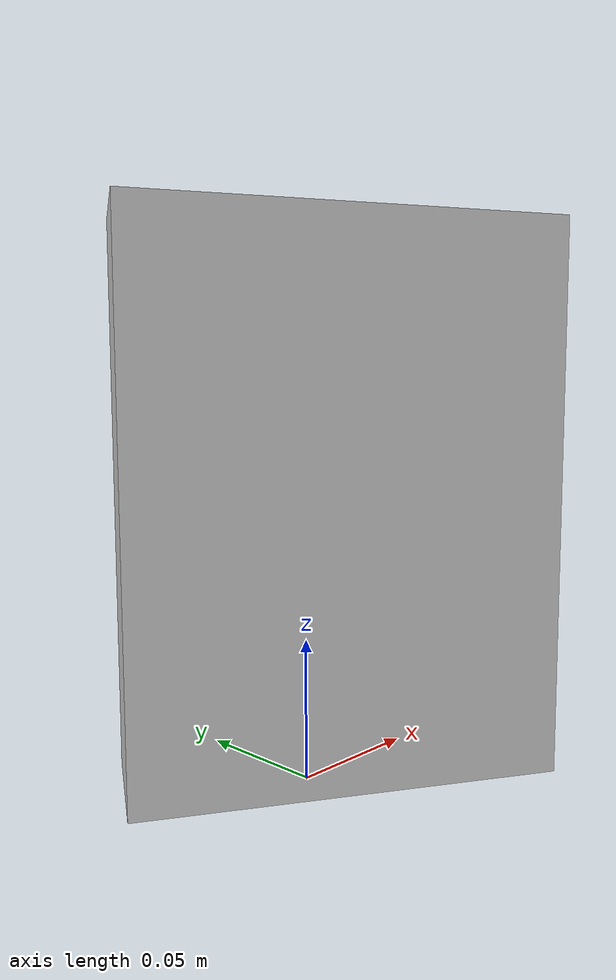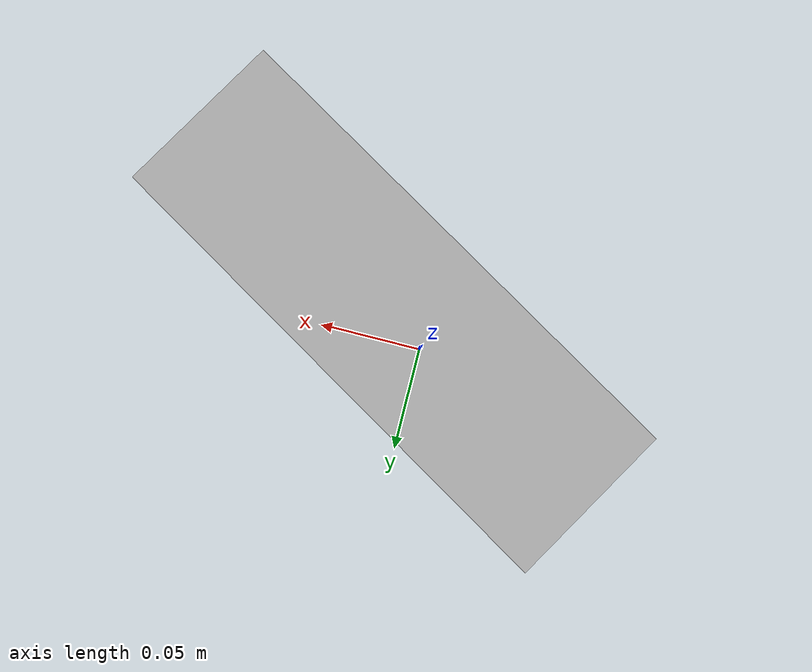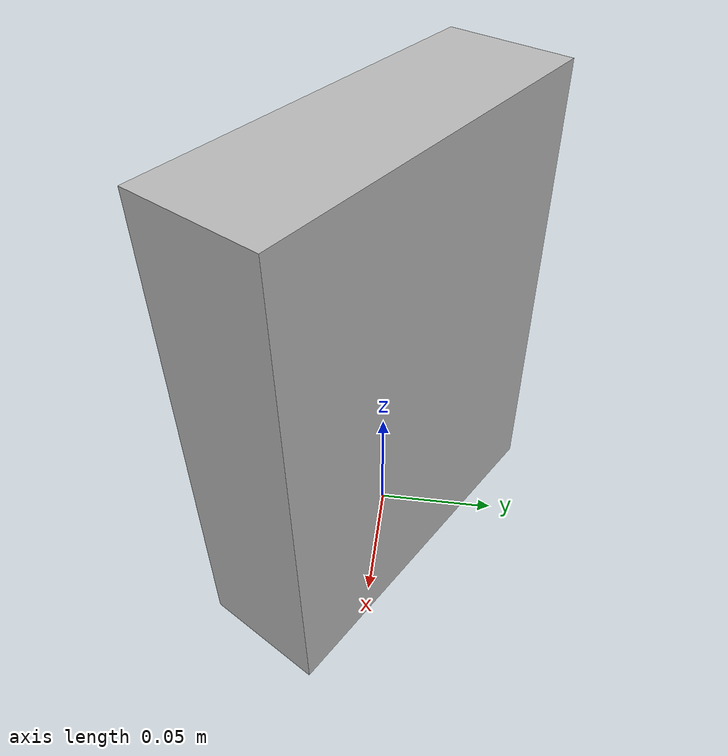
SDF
<sdf version='1.6'>
  <model name='box'>
    <link name='main_body'>
      <pose frame=''>0 0 0.0 0 0 0</pose>
      <inertial>
        <pose frame=''>0.0 0 0.0 0 -0 0</pose>
        <mass>0.225</mass>
        <inertia>
          <ixx>0.00113484375</ixx>
          <ixy>0</ixy>
          <ixz>0</ixz>
          <iyy>0.00075984375</iyy>
          <iyz>0</iyz>
          <izz>0.00046875</izz>
        </inertia>
      </inertial>

      <visual name='main_body_visual'>
        <pose frame=''>0.014 -0.0005 0.0975 0 -0 1.03</pose>
        <geometry>
          <box>
            <size>0.05 0.15 0.195</size>
          </box>
        </geometry>
      </visual>

      <collision name='main_body_collision'>
        <pose frame=''>0.014 -0.0005 0.0975 0 -0 1.03</pose>
        <geometry>
          <box>
            <size>0.05 0.15 0.195</size>
          </box>
        </geometry>
        <surface>
          <friction>
            <ode>
              <mu>0.9</mu>
              <mu2>0.5</mu2>
            </ode>
          </friction>
        </surface>
      </collision>
    </link>
  </model>
</sdf>
